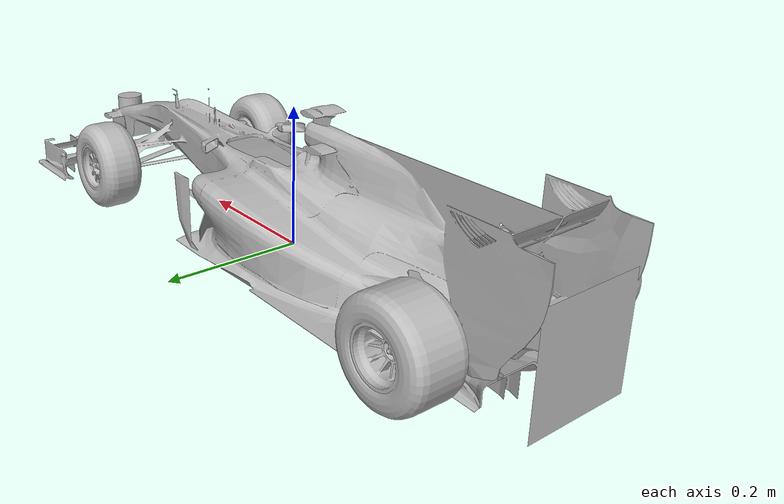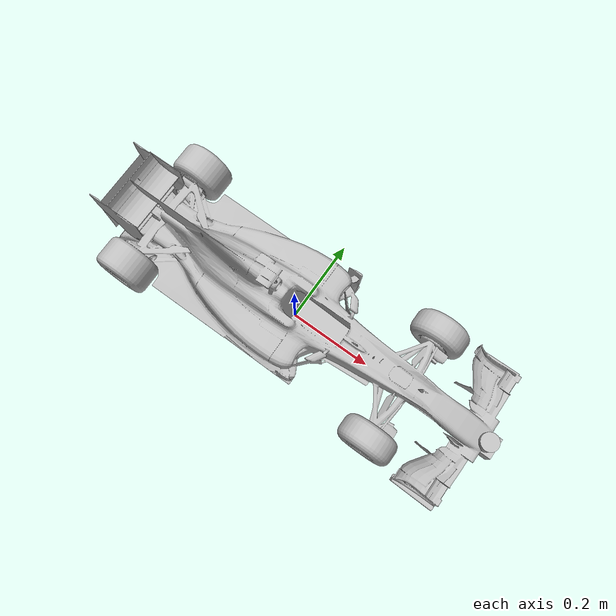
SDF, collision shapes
<?xml version='1.0'?>
<sdf version="1.4">
<model name="f1_tororosso">
  <pose>0 0 0 0 0 0</pose>
  <static>false</static>
    <link name="f1">
    	<pose>0 0 0 0 0 0</pose>
	<inertial>
        <mass>10</mass>
        <inertia>
          <ixx>1</ixx>
          <ixy>0.0</ixy>
          <iyy>1</iyy>
          <ixz>0.0</ixz>
          <iyz>0.0</iyz>
          <izz>1.0</izz>
      </inertia>
    </inertial>
    <collision name="collision">
        <geometry>
            <mesh>
                 <uri>model://f1_tororosso/Tororosso/Car.obj</uri>
                 <scale>0.2 0.2 0.2</scale>
            </mesh>
        </geometry>
    </collision>
    <visual name="visual">
        <geometry>
          <mesh>
            <uri>model://f1_tororosso/Tororosso/Car.obj</uri>
            <scale>0.2 0.2 0.2</scale>
        </mesh>
      </geometry>
    </visual>
    </link>

  <link name='laser'>
        <pose>0.500000 0.000000 0.072000 0.000000 0.000000 0.00000</pose>
        <gravity>0</gravity>
        <inertial>
          <mass>1</mass>
          <inertia>
            <ixx>1.000000</ixx>
            <ixy>0.000000</ixy>
            <ixz>0.000000</ixz>
            <iyy>1.000000</iyy>
            <iyz>0.000000</iyz>
            <izz>1.000000</izz>
        </inertia>
      </inertial>
        <visual name='visual'>
          <geometry>
            <mesh>
              <uri>model://f1ROS/meshes/hokuyo.dae</uri>
          </mesh>
        </geometry>
      </visual>
        <collision name='collision-base'>
          <pose>0.000000 0.000000 -0.014500 0.000000 0.000000 0.000000</pose>
          <geometry>
            <box>
              <size>0.050000 0.050000 0.041000</size>
          </box>
        </geometry>
          <max_contacts>10</max_contacts>
          <surface>
            <bounce/>
            <friction>
              <ode/>
          </friction>
            <contact>
              <ode/>
          </contact>
        </surface>
      </collision>
        <collision name='collision-top'>
          <pose>0.000000 0.000000 0.020500 0.000000 0.000000 0.000000</pose>
          <geometry>
            <cylinder>
              <radius>0.021000</radius>
              <length>0.029000</length>
          </cylinder>
        </geometry>
          <max_contacts>10</max_contacts>
          <surface>
            <bounce/>
            <friction>
              <ode/>
          </friction>
            <contact>
              <ode/>
          </contact>
        </surface>
      </collision>
        <sensor name='laser' type='ray'>
          <ray>
            <scan>
              <horizontal>
                <samples>180</samples>
                <resolution>1.000000</resolution>
                <min_angle>-1.570000</min_angle>
                <max_angle>1.570000</max_angle>
            </horizontal>
          </scan>
            <range>
              <min>0.080000</min>
              <max>10.000000</max>
              <resolution>0.010000</resolution>
          </range>
        </ray>
          <update_rate>20.000000</update_rate>
		<plugin name="gazebo_ros_head_hokuyo_controller" filename="libgazebo_ros_laser.so">
			<topicName>/F1ROS/laser/scan</topicName>
			<frameName>laser</frameName>
		</plugin>
          <always_on>1</always_on>
          <visualize>1</visualize>
      </sensor>
        <velocity_decay>
          <linear>0.000000</linear>
          <angular>0.000000</angular>
      </velocity_decay>
        <self_collide>0</self_collide>
        <kinematic>0</kinematic>
    </link>

    <joint type="revolute" name="laser_joint">
        <pose>0 0 0 0 0 0</pose>
        <child>laser</child>
        <parent>f1</parent>
        <axis>
            <xyz>0 0 0</xyz>
        </axis>
    </joint>

  <plugin name="object_controller" filename="libgazebo_ros_planar_move.so">
      <commandTopic>F1ROS/cmd_vel</commandTopic>
      <odometryTopic>F1ROS/odom</odometryTopic>
      <odometryFrame>odom</odometryFrame>
      <odometryRate>20.0</odometryRate>
      <robotBaseFrame>xf1</robotBaseFrame>
  </plugin>
</model>
</sdf>
